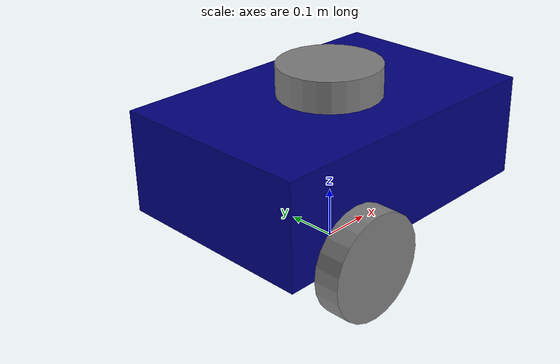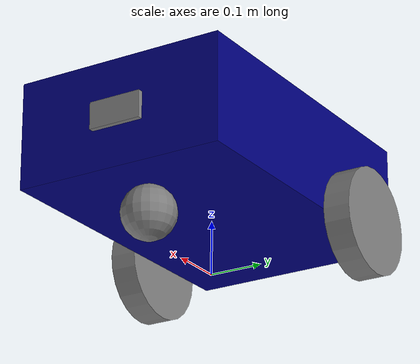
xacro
<?xml version="1.0"?>
<robot name="my_robot" xmlns:xacro="http://www.ros.org/wiki/xacro">
  <xacro:include filename="common_properties.xacro"/>
  <xacro:include filename="mobile_base.xacro"/>
  <xacro:include filename="mobile_base_gazebo.xacro"/>
  <xacro:include filename="camera.xacro"/>
  <xacro:include filename="lidar.xacro"/>

</robot>

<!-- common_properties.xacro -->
<robot xmlns:xacro="http://www.ros.org/wiki/xacro">

    <material name="blue">
        <color rgba="0 0 0.5 1"/>
    </material>

    <material name="grey">
        <color rgba="0.5 0.5 0.5 1"/>
    </material>
    <material name="orange">
        <color rgba="1 0.6 0 1"/>
    </material>
    <material name="yellow">
        <color rgba="1 1 0 1"/>
    </material>

    <xacro:macro name="inertial" params="m o_xyz o_rpy x y z">
        <inertial>
            <mass value="${m}"/>
            <origin xyz="${o_xyz}" rpy="${o_rpy}"/>
            <inertia ixx="${(m/12)*(y*y + z*z)}" ixy="0" ixz="0"
                    iyy="${(m/12)*(x*x+z*z)}" iyz="0"
                    izz="${(m/12)*(x*x+y*y)}"/>

        </inertial>
    </xacro:macro>

    <xacro:macro name="circle_inertia" params="m o_xyz o_rpy l r">
        <inertial>
            <mass value="${m}"/>
            <origin xyz="${o_xyz}" rpy="${o_rpy}"/>
            <inertia ixx="${(m/12)*(3*r*r + l*l)}" ixy="0" ixz="0"
                    iyy="${(m/12)*(3*r*r+l*l)}" iyz="0"
                    izz="${(m/2)*(r*r)}"/>
        </inertial>
    </xacro:macro>
    <xacro:macro name="sphere_inertia" params="m o_xyz o_rpy r">
        <inertial>
            <mass value="${m}"/>
            <origin xyz="${o_xyz}" rpy="${o_rpy}"/>
            <inertia ixx="${(2/5)*m*(r*r)}" ixy="0" ixz="0"
                    iyy="${(2/5)*m*(r*r)}" iyz="0"
                    izz="${(2/5)*m*(r*r)}"/>
        </inertial>
    </xacro:macro>

</robot>

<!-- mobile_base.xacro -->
<robot xmlns:xacro="http://www.ros.org/wiki/xacro">
    <xacro:property name="base_length" value="0.6"/>
    <xacro:property name="base_width" value="0.4"/>
    <xacro:property name="base_height" value="0.2"/>
    <xacro:property name="wheel_radius" value="0.1"/>
    <xacro:property name="wheel_length" value="0.05"/>

    <link name="base_footprint"/>
    <link name="base_link">
        <visual>
        <origin xyz="0 0 ${base_height/2}" rpy="0 0 0"/>
        <geometry>
            <box size="${base_length} ${base_width} ${base_height}"/>
        </geometry>
        <material name="blue"/>
        </visual>
        <collision>
        <origin xyz="0 0 ${base_height/2}" rpy="0 0 0"/>
        <geometry>
            <box size="${base_length} ${base_width} ${base_height}"/>
        </geometry>
        </collision>
        <xacro:inertial m="5.0" o_xyz="0 0 ${base_height/2}" o_rpy="0 0 0" x="${base_length}" y="${base_width}" z="${base_height}"/>

    </link>
    <xacro:macro name="wheel_link" params="prefix">
        <link name="${prefix}_wheel_link">
        <visual>
            <origin xyz="0 0 0" rpy="${pi/2} 0 0"/>
            <geometry>
            <cylinder radius="${wheel_radius}" length="${wheel_length}"/>
            </geometry>
            <material name="grey"/>
        </visual>
        <collision>
            <geometry>
                <sphere radius="${wheel_radius}"/>
            </geometry>
            <origin xyz="0 0 0" rpy="0 0 0"/>
        </collision>
        <xacro:circle_inertia m="1" o_xyz="0 0 0" o_rpy="${pi/2} 0 0" l="${wheel_length}" r="${wheel_radius}"/>
        </link>
    </xacro:macro>
    <xacro:wheel_link prefix="right"/>
    <xacro:wheel_link prefix="left"/>

    <link name="caster_wheel_link">
        <visual>
        <origin xyz="0 0 0" rpy="0 0 0"/>
        <geometry>
            <sphere radius="${wheel_radius/2}"/>
        </geometry>
        <material name="grey"/>
        </visual>
        <collision>
        <origin xyz="0 0 0" rpy="0 0 0"/>
        <geometry>
            <sphere radius="${wheel_radius/2}"/>
        </geometry>
        </collision>
        <xacro:sphere_inertia m="0.5" o_xyz="0 0 0" o_rpy="0 0 0" r="${wheel_radius/2}"/>
    </link>
    <joint name="base_footprint_to_base_link" type="fixed">
        <parent link="base_footprint"/>
        <child link="base_link"/>
        <origin xyz="0 0 ${wheel_radius}" rpy="0 0 0"/>
    </joint>

    <joint name="right_wheel_joint" type="continuous">
        <parent link="base_link"/>
        <child link="right_wheel_link"/>
        <origin xyz="${-base_length/4} ${-(base_width + wheel_length)/2} 0" rpy="0 0 0"/>
        <axis xyz="0 1 0"/>
    </joint>
    <joint name="left_wheel_joint" type="continuous">
        <origin xyz="${-base_length/4} ${(base_width + wheel_length)/2} 0" rpy="0 0 0"/>
        <parent link="base_link"/>
        <child link="left_wheel_link"/>
        <axis xyz="0 1 0"/>
    </joint>
    <joint name="caster_joint" type="fixed">
        <origin xyz="${base_length/3} 0 ${-(wheel_radius)/2}" rpy="0 0 0"/>
        <parent link="base_link"/>
        <child link="caster_wheel_link"/>
    </joint>
</robot>

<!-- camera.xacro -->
<robot xmlns:xacro="https://www.ros.org/wiki/xacro">
    <xacro:property name="camera_length" value="0.01"/>
    <xacro:property name="camera_width" value="0.1" />
    <xacro:property name="camera_height" value="0.05"/>

    <link name="camera_link">
        <visual>
            <geometry>
                <box size="${camera_length} ${camera_width} ${camera_height}"/>
            </geometry>
            <material name="grey"/>
        </visual>
        <collision>
            <geometry>
                <box size="${camera_length} ${camera_width} ${camera_height}"/>
            </geometry>
        </collision>
        <xacro:inertial m="0.1" x="${camera_length}" y="${camera_width}" z="${camera_height}" o_xyz="0 0 0" o_rpy="0 0 0"/>
    </link>
    <joint name="camera_base_joint" type="fixed">
        <parent link="base_link"/>
        <child link="camera_link"/>
        <origin xyz="${(base_length + camera_length)/2 } 0 ${base_height/2}" rpy="0 0 0"/>
    </joint>

    <link name="camera_link_optical"/>

    <joint name="camera_optical_joint" type="fixed">
        <!-- these values have to be these values otherwise the gazebo camera
            image won't be aligned properly with the frame it is supposedly
            originating from -->
        <origin xyz="0 0 0" rpy="${-pi/2} 0 ${-pi/2}"/>
        <parent link="camera_link"/>
        <child link="camera_link_optical"/>
    </joint>

    <gazebo reference="camera_link">
        <sensor name="camera" type="camera">
            <camera>
                <horizontal_fov>1.3962634</horizontal_fov>
                <image>
                    <width>640</width>
                    <height>480</height>
                    <format>R8G8B8</format>
                </image>
                <clip>
                    <near>0.1</near>
                    <far>15</far>
                </clip>
                <noise>
                    <type>gaussian</type>
                    <mean>0.0</mean>
                    <stddev>0.007</stddev>
                </noise>
                <optical_frame_id>camera_link_optical</optical_frame_id>
                <camera_info_topic>camera/camera_info</camera_info_topic>
            </camera>
            <always_on>1</always_on>
            <update_rate>20</update_rate>
            <visualize>true</visualize>
            <topic>camera/image_raw</topic>
        </sensor>
    </gazebo>
</robot>

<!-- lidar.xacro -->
<robot xmlns:xacro="http://www.ros.org/wiki/xacro">
    <xacro:property name="lidar_radius" value="0.1"/>
    <xacro:property name="lidar_length" value="0.06"/>

    <link name="laser_frame">
        <visual>
            <geometry>
                <cylinder radius="${lidar_radius}" length="${lidar_length}"/>
            </geometry>
            <material name="grey"/>
        </visual>
        <collision>
            <geometry>
                <cylinder radius="${lidar_radius}" length="${lidar_length}"/>
            </geometry>
        </collision>
        <xacro:circle_inertia m="0.5" o_xyz="0 0 0" o_rpy="0 0 0" l="${lidar_length}" r="${lidar_radius}"/>
    </link>
    <joint name="base_scan_joint" type="fixed">
        <origin xyz="0 0 ${base_height + lidar_length/2}" rpy="0 0 0"/>
        <parent link="base_link"/>
        <child link="laser_frame"/>
    </joint>

    <gazebo reference="laser_frame">
        <sensor name="laser" type="gpu_lidar">
            <pose> 0 0 0 0 0 0 </pose>
            <always_on>true</always_on>
            <visualize>true</visualize>
            <update_rate>10</update_rate>
            <topic>scan</topic>
            <gz_frame_id>laser_frame</gz_frame_id>
            <lidar>
                <scan>
                    <horizontal>
                    <samples>720</samples>
                    <resolution>1</resolution>
                    <min_angle>-3.14</min_angle>
                    <max_angle>3.14</max_angle>
                    </horizontal>
                </scan>
                <range>
                    <min>0.05</min>
                    <max>10.0</max>
                    <resolution>0.01</resolution>
                </range>
                <noise>
                    <type>gaussian</type>
                    <mean>0.0</mean>
                    <stddev>0.01</stddev>
                </noise>
                <frame_id>laser_frame</frame_id>
            </lidar>
            <always_on>1</always_on>
            <visualize>true</visualize>
        </sensor>
    </gazebo>
</robot>
